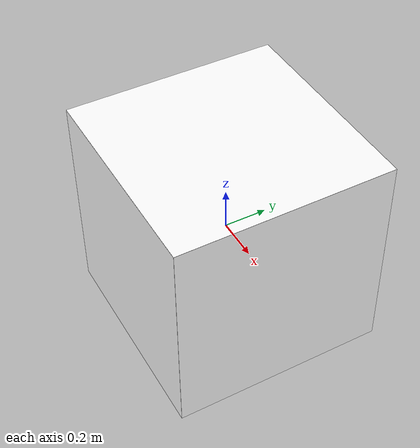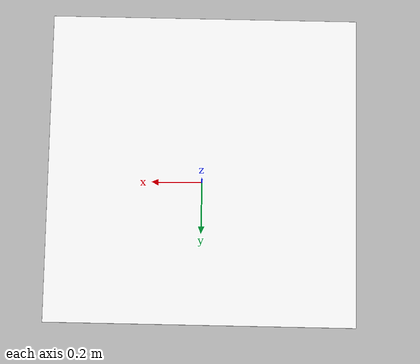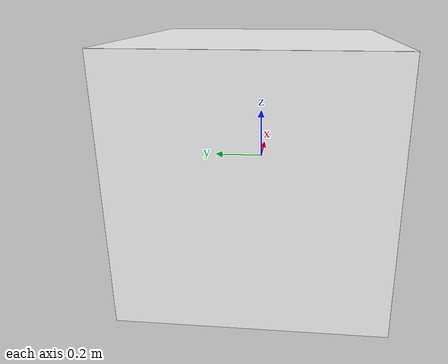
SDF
<?xml version="1.0" ?>
<sdf version="1.9">
  <model name="cube">
    <static>true</static>
    <link name="link">
      <inertial>
        <mass>1.0</mass>
        <inertia>
          <ixx>0.166667</ixx>
          <ixy>0</ixy>
          <ixz>0</ixz>
          <iyy>0.166667</iyy>
          <iyz>0</iyz>
          <izz>0.166667</izz>
        </inertia>
      </inertial>

      <!-- Collision Box -->
      <collision name="collision">
        <geometry>
          <box>
            <size>1 1 1</size>
          </box>
        </geometry>
      </collision>

      <!-- Face 1: Front (Positive X) -->
      <visual name="face_front">
        <pose>0.5 0 0 0 0 0</pose> <!-- Offset to face -->
        <geometry>
          <box>
            <size>0.001 1 1</size> <!-- Thin plane-like box -->
          </box>
        </geometry>
        <material>
          <ambient>1 1 1 1</ambient>
          <diffuse>1 1 1 1</diffuse>
          <pbr>
            <metal>
              <albedo_map>model://cube/textures/texture.jpeg</albedo_map>
            </metal>
          </pbr>
        </material>
      </visual>

      <!-- Face 2: Back (Negative X) -->
      <visual name="face_back">
        <pose>-0.5 0 0 0 0 0</pose>
        <geometry>
          <box>
            <size>0.001 1 1</size>
          </box>
        </geometry>
        <material>
          <ambient>1 1 1 1</ambient>
          <diffuse>1 1 1 1</diffuse>
          <pbr>
            <metal>
              <albedo_map>model://cube/textures/texture2.jpeg</albedo_map>
            </metal>
          </pbr>
        </material>
      </visual>

      <!-- Face 3: Left (Positive Y) -->
      <visual name="face_left">
        <pose>0 0.5 0 0 0 0</pose>
        <geometry>
          <box>
            <size>1 0.001 1</size>
          </box>
        </geometry>
        <material>
          <ambient>1 1 1 1</ambient>
          <diffuse>1 1 1 1</diffuse>
          <pbr>
            <metal>
              <albedo_map>model://cube/textures/texture3.jpeg</albedo_map>
            </metal>
          </pbr>
        </material>
      </visual>

      <!-- Face 4: Right (Negative Y) -->
      <visual name="face_right">
        <pose>0 -0.5 0 0 0 0</pose>
        <geometry>
          <box>
            <size>1 0.001 1</size>
          </box>
        </geometry>
        <material>
          <ambient>1 1 1 1</ambient>
          <diffuse>1 1 1 1</diffuse>
          <pbr>
            <metal>
              <albedo_map>model://cube/textures/texture4.jpeg</albedo_map>
            </metal>
          </pbr>
        </material>
      </visual>

      <!-- Face 5: Top (Positive Z) -->
      <visual name="face_top">
        <pose>0 0 0.5 0 0 0</pose>
        <geometry>
          <box>
            <size>1 1 0.001</size>
          </box>
        </geometry>
        <material>
          <ambient>1 1 1 1</ambient>
          <diffuse>1 1 1 1</diffuse>
          <pbr>
            <metal>
              <albedo_map>model://cube/textures/texture5.jpeg</albedo_map>
            </metal>
          </pbr>
        </material>
      </visual>

    </link>
  </model>
</sdf>
